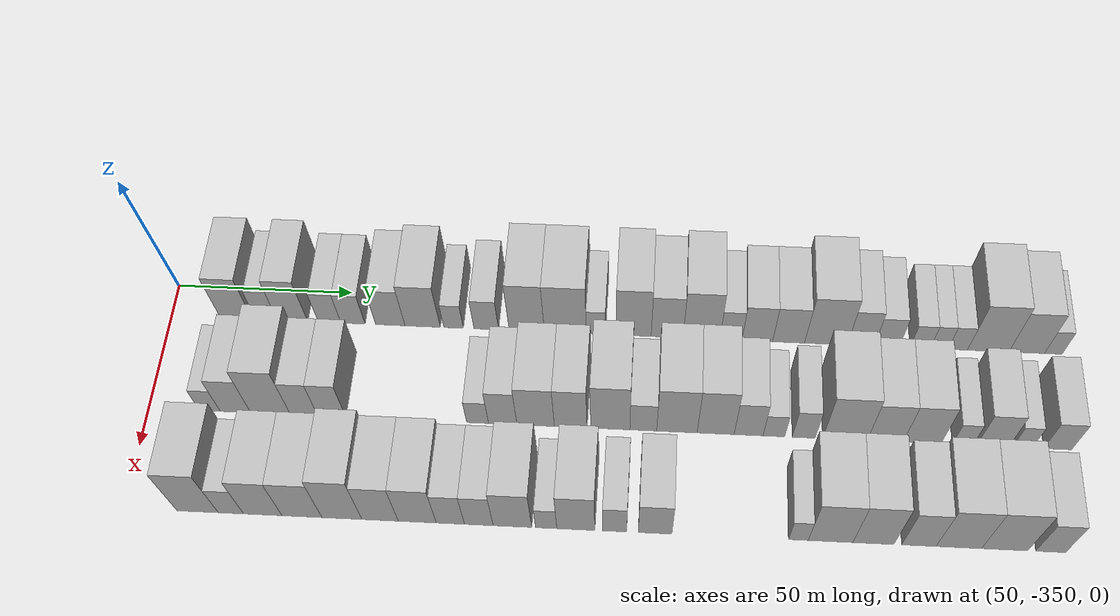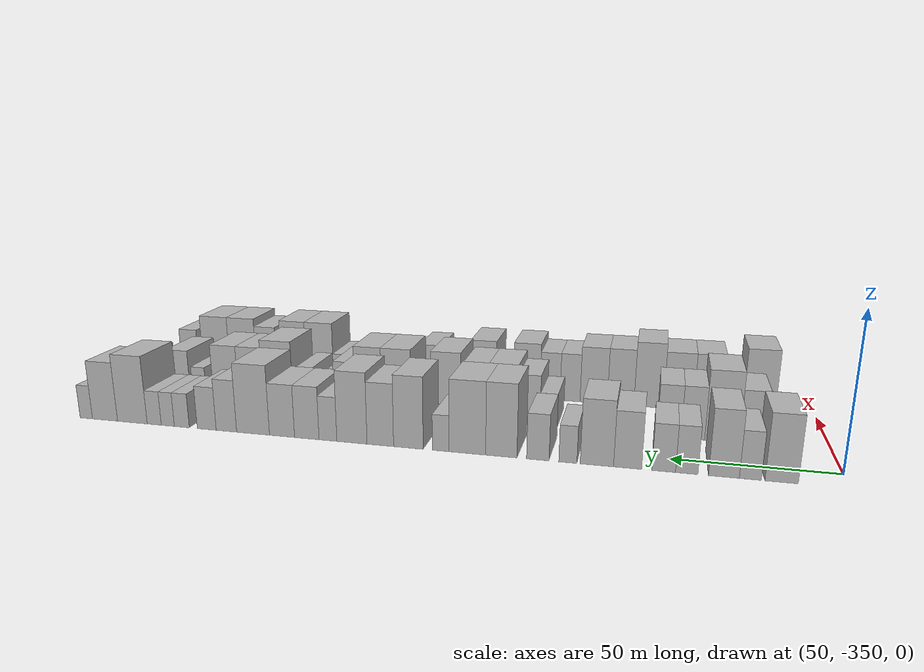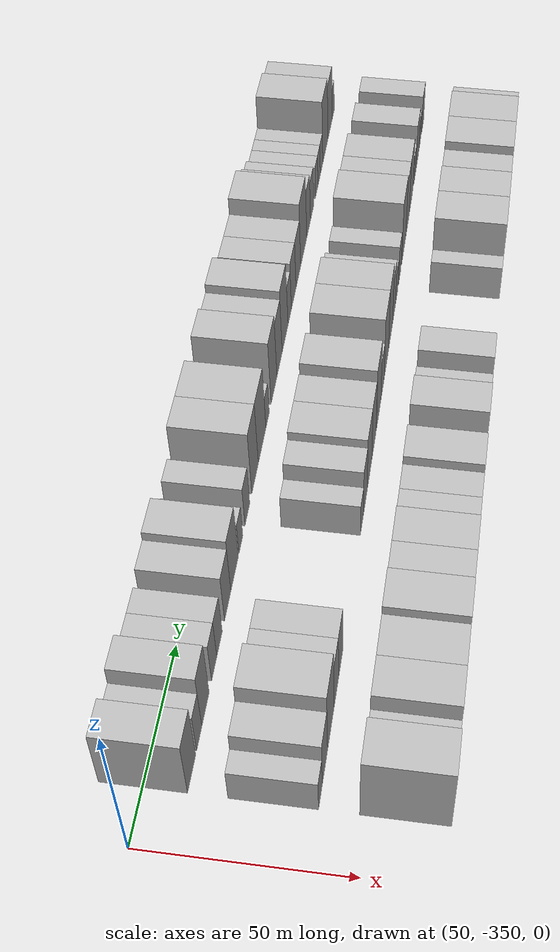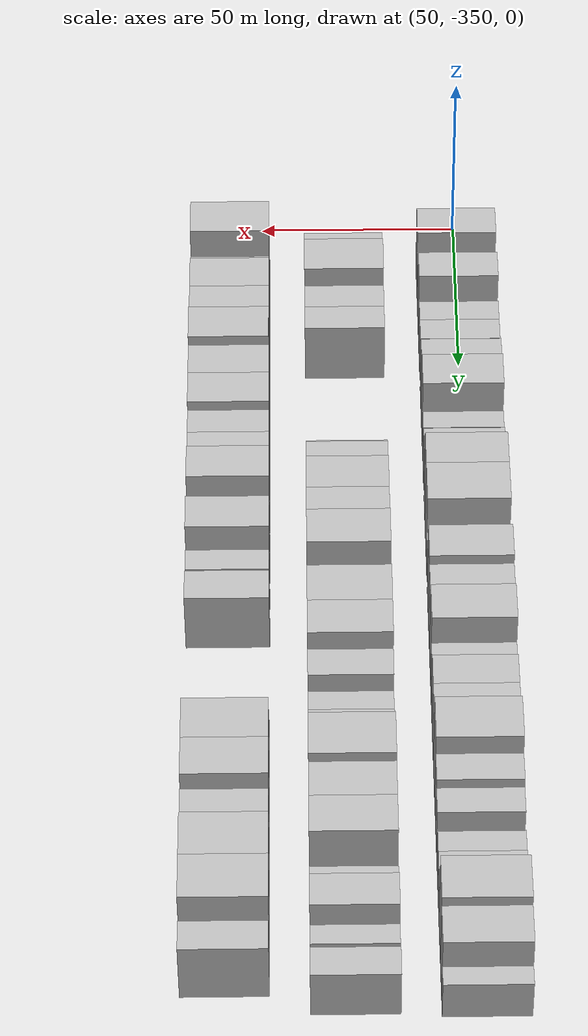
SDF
<sdf version="1.6">
 <world name="default">
  <model name="building_1">
   <static>1</static>
   <pose>50.0000 -331.4374 0 0.000000 0.000000 0.000000</pose>
   <link name="link">
    <pose>0 0 10.50 0 0 0</pose>
    <collision name="collision"><geometry><box><size>20.0000 9.1252 21.0000</size></box></geometry></collision>
    <visual name="visual">
     <cast_shadows>0</cast_shadows>
     <geometry><box><size>20.0000 9.1252 21.0000</size></box></geometry>
     <material>
      <script>
       <uri>model://HANNAS_wall/materials/scripts</uri>
       <uri>model://HANNAS_wall/materials/textures</uri>
       <name>vrc/HANNAS_wall</name>
      </script>
     </material>
    </visual>
   </link>
  </model>
  <model name="building_2">
   <static>1</static>
   <pose>50.0000 -322.8205 0 0.000000 0.000000 0.000000</pose>
   <link name="link">
    <pose>0 0 7.50 0 0 0</pose>
    <collision name="collision"><geometry><box><size>20.0000 6.1086 15.0000</size></box></geometry></collision>
    <visual name="visual">
     <cast_shadows>0</cast_shadows>
     <geometry><box><size>20.0000 6.1086 15.0000</size></box></geometry>
     <material>
      <script>
       <uri>model://HANNAS_wall/materials/scripts</uri>
       <uri>model://HANNAS_wall/materials/textures</uri>
       <name>vrc/HANNAS_wall</name>
      </script>
     </material>
    </visual>
   </link>
  </model>
  <model name="building_3">
   <static>1</static>
   <pose>50.0000 -315.4396 0 0.000000 0.000000 0.000000</pose>
   <link name="link">
    <pose>0 0 10.50 0 0 0</pose>
    <collision name="collision"><geometry><box><size>20.0000 8.6531 21.0000</size></box></geometry></collision>
    <visual name="visual">
     <cast_shadows>0</cast_shadows>
     <geometry><box><size>20.0000 8.6531 21.0000</size></box></geometry>
     <material>
      <script>
       <uri>model://HANNAS_wall/materials/scripts</uri>
       <uri>model://HANNAS_wall/materials/textures</uri>
       <name>vrc/HANNAS_wall</name>
      </script>
     </material>
    </visual>
   </link>
  </model>
  <model name="building_4">
   <static>1</static>
   <pose>50.0000 -304.8928 0 0.000000 0.000000 0.000000</pose>
   <link name="link">
    <pose>0 0 7.50 0 0 0</pose>
    <collision name="collision"><geometry><box><size>20.0000 6.4405 15.0000</size></box></geometry></collision>
    <visual name="visual">
     <cast_shadows>0</cast_shadows>
     <geometry><box><size>20.0000 6.4405 15.0000</size></box></geometry>
     <material>
      <script>
       <uri>model://HANNAS_wall/materials/scripts</uri>
       <uri>model://HANNAS_wall/materials/textures</uri>
       <name>vrc/HANNAS_wall</name>
      </script>
     </material>
    </visual>
   </link>
  </model>
  <model name="building_5">
   <static>1</static>
   <pose>50.0000 -298.2574 0 0.000000 0.000000 0.000000</pose>
   <link name="link">
    <pose>0 0 7.50 0 0 0</pose>
    <collision name="collision"><geometry><box><size>20.0000 6.8302 15.0000</size></box></geometry></collision>
    <visual name="visual">
     <cast_shadows>0</cast_shadows>
     <geometry><box><size>20.0000 6.8302 15.0000</size></box></geometry>
     <material>
      <script>
       <uri>model://HANNAS_wall/materials/scripts</uri>
       <uri>model://HANNAS_wall/materials/textures</uri>
       <name>vrc/HANNAS_wall</name>
      </script>
     </material>
    </visual>
   </link>
  </model>
  <model name="building_6">
   <static>1</static>
   <pose>50.0000 -287.6913 0 0.000000 0.000000 0.000000</pose>
   <link name="link">
    <pose>0 0 9.00 0 0 0</pose>
    <collision name="collision"><geometry><box><size>20.0000 8.3021 18.0000</size></box></geometry></collision>
    <visual name="visual">
     <cast_shadows>0</cast_shadows>
     <geometry><box><size>20.0000 8.3021 18.0000</size></box></geometry>
     <material>
      <script>
       <uri>model://HANNAS_wall/materials/scripts</uri>
       <uri>model://HANNAS_wall/materials/textures</uri>
       <name>vrc/HANNAS_wall</name>
      </script>
     </material>
    </visual>
   </link>
  </model>
  <model name="building_7">
   <static>1</static>
   <pose>50.0000 -278.5388 0 0.000000 0.000000 0.000000</pose>
   <link name="link">
    <pose>0 0 10.50 0 0 0</pose>
    <collision name="collision"><geometry><box><size>20.0000 10.0028 21.0000</size></box></geometry></collision>
    <visual name="visual">
     <cast_shadows>0</cast_shadows>
     <geometry><box><size>20.0000 10.0028 21.0000</size></box></geometry>
     <material>
      <script>
       <uri>model://HANNAS_wall/materials/scripts</uri>
       <uri>model://HANNAS_wall/materials/textures</uri>
       <name>vrc/HANNAS_wall</name>
      </script>
     </material>
    </visual>
   </link>
  </model>
  <model name="building_8">
   <static>1</static>
   <pose>50.0000 -269.7863 0 0.000000 0.000000 0.000000</pose>
   <link name="link">
    <pose>0 0 6.00 0 0 0</pose>
    <collision name="collision"><geometry><box><size>20.0000 5.5023 12.0000</size></box></geometry></collision>
    <visual name="visual">
     <cast_shadows>0</cast_shadows>
     <geometry><box><size>20.0000 5.5023 12.0000</size></box></geometry>
     <material>
      <script>
       <uri>model://HANNAS_wall/materials/scripts</uri>
       <uri>model://HANNAS_wall/materials/textures</uri>
       <name>vrc/HANNAS_wall</name>
      </script>
     </material>
    </visual>
   </link>
  </model>
  <model name="building_9">
   <static>1</static>
   <pose>50.0000 -260.5613 0 0.000000 0.000000 0.000000</pose>
   <link name="link">
    <pose>0 0 7.50 0 0 0</pose>
    <collision name="collision"><geometry><box><size>20.0000 6.9476 15.0000</size></box></geometry></collision>
    <visual name="visual">
     <cast_shadows>0</cast_shadows>
     <geometry><box><size>20.0000 6.9476 15.0000</size></box></geometry>
     <material>
      <script>
       <uri>model://HANNAS_wall/materials/scripts</uri>
       <uri>model://HANNAS_wall/materials/textures</uri>
       <name>vrc/HANNAS_wall</name>
      </script>
     </material>
    </visual>
   </link>
  </model>
  <model name="building_10">
   <static>1</static>
   <pose>50.0000 -249.1373 0 0.000000 0.000000 0.000000</pose>
   <link name="link">
    <pose>0 0 12.00 0 0 0</pose>
    <collision name="collision"><geometry><box><size>20.0000 9.9005 24.0000</size></box></geometry></collision>
    <visual name="visual">
     <cast_shadows>0</cast_shadows>
     <geometry><box><size>20.0000 9.9005 24.0000</size></box></geometry>
     <material>
      <script>
       <uri>model://HANNAS_wall/materials/scripts</uri>
       <uri>model://HANNAS_wall/materials/textures</uri>
       <name>vrc/HANNAS_wall</name>
      </script>
     </material>
    </visual>
   </link>
  </model>
  <model name="building_11">
   <static>1</static>
   <pose>50.0000 -238.2753 0 0.000000 0.000000 0.000000</pose>
   <link name="link">
    <pose>0 0 12.00 0 0 0</pose>
    <collision name="collision"><geometry><box><size>20.0000 11.8236 24.0000</size></box></geometry></collision>
    <visual name="visual">
     <cast_shadows>0</cast_shadows>
     <geometry><box><size>20.0000 11.8236 24.0000</size></box></geometry>
     <material>
      <script>
       <uri>model://HANNAS_wall/materials/scripts</uri>
       <uri>model://HANNAS_wall/materials/textures</uri>
       <name>vrc/HANNAS_wall</name>
      </script>
     </material>
    </visual>
   </link>
  </model>
  <model name="building_12">
   <static>1</static>
   <pose>50.0000 -229.6843 0 0.000000 0.000000 0.000000</pose>
   <link name="link">
    <pose>0 0 6.00 0 0 0</pose>
    <collision name="collision"><geometry><box><size>20.0000 5.3582 12.0000</size></box></geometry></collision>
    <visual name="visual">
     <cast_shadows>0</cast_shadows>
     <geometry><box><size>20.0000 5.3582 12.0000</size></box></geometry>
     <material>
      <script>
       <uri>model://HANNAS_wall/materials/scripts</uri>
       <uri>model://HANNAS_wall/materials/textures</uri>
       <name>vrc/HANNAS_wall</name>
      </script>
     </material>
    </visual>
   </link>
  </model>
  <model name="building_13">
   <static>1</static>
   <pose>50.0000 -219.1030 0 0.000000 0.000000 0.000000</pose>
   <link name="link">
    <pose>0 0 12.00 0 0 0</pose>
    <collision name="collision"><geometry><box><size>20.0000 9.8044 24.0000</size></box></geometry></collision>
    <visual name="visual">
     <cast_shadows>0</cast_shadows>
     <geometry><box><size>20.0000 9.8044 24.0000</size></box></geometry>
     <material>
      <script>
       <uri>model://HANNAS_wall/materials/scripts</uri>
       <uri>model://HANNAS_wall/materials/textures</uri>
       <name>vrc/HANNAS_wall</name>
      </script>
     </material>
    </visual>
   </link>
  </model>
  <model name="building_14">
   <static>1</static>
   <pose>50.0000 -209.7361 0 0.000000 0.000000 0.000000</pose>
   <link name="link">
    <pose>0 0 10.50 0 0 0</pose>
    <collision name="collision"><geometry><box><size>20.0000 8.9294 21.0000</size></box></geometry></collision>
    <visual name="visual">
     <cast_shadows>0</cast_shadows>
     <geometry><box><size>20.0000 8.9294 21.0000</size></box></geometry>
     <material>
      <script>
       <uri>model://HANNAS_wall/materials/scripts</uri>
       <uri>model://HANNAS_wall/materials/textures</uri>
       <name>vrc/HANNAS_wall</name>
      </script>
     </material>
    </visual>
   </link>
  </model>
  <model name="building_15">
   <static>1</static>
   <pose>50.0000 -200.1119 0 0.000000 0.000000 0.000000</pose>
   <link name="link">
    <pose>0 0 12.00 0 0 0</pose>
    <collision name="collision"><geometry><box><size>20.0000 10.3190 24.0000</size></box></geometry></collision>
    <visual name="visual">
     <cast_shadows>0</cast_shadows>
     <geometry><box><size>20.0000 10.3190 24.0000</size></box></geometry>
     <material>
      <script>
       <uri>model://HANNAS_wall/materials/scripts</uri>
       <uri>model://HANNAS_wall/materials/textures</uri>
       <name>vrc/HANNAS_wall</name>
      </script>
     </material>
    </visual>
   </link>
  </model>
  <model name="building_16">
   <static>1</static>
   <pose>50.0000 -191.8683 0 0.000000 0.000000 0.000000</pose>
   <link name="link">
    <pose>0 0 7.50 0 0 0</pose>
    <collision name="collision"><geometry><box><size>20.0000 6.1682 15.0000</size></box></geometry></collision>
    <visual name="visual">
     <cast_shadows>0</cast_shadows>
     <geometry><box><size>20.0000 6.1682 15.0000</size></box></geometry>
     <material>
      <script>
       <uri>model://HANNAS_wall/materials/scripts</uri>
       <uri>model://HANNAS_wall/materials/textures</uri>
       <name>vrc/HANNAS_wall</name>
      </script>
     </material>
    </visual>
   </link>
  </model>
  <model name="building_17">
   <static>1</static>
   <pose>50.0000 -184.5009 0 0.000000 0.000000 0.000000</pose>
   <link name="link">
    <pose>0 0 9.00 0 0 0</pose>
    <collision name="collision"><geometry><box><size>20.0000 8.5665 18.0000</size></box></geometry></collision>
    <visual name="visual">
     <cast_shadows>0</cast_shadows>
     <geometry><box><size>20.0000 8.5665 18.0000</size></box></geometry>
     <material>
      <script>
       <uri>model://HANNAS_wall/materials/scripts</uri>
       <uri>model://HANNAS_wall/materials/textures</uri>
       <name>vrc/HANNAS_wall</name>
      </script>
     </material>
    </visual>
   </link>
  </model>
  <model name="building_18">
   <static>1</static>
   <pose>50.0000 -175.7583 0 0.000000 0.000000 0.000000</pose>
   <link name="link">
    <pose>0 0 9.00 0 0 0</pose>
    <collision name="collision"><geometry><box><size>20.0000 8.9187 18.0000</size></box></geometry></collision>
    <visual name="visual">
     <cast_shadows>0</cast_shadows>
     <geometry><box><size>20.0000 8.9187 18.0000</size></box></geometry>
     <material>
      <script>
       <uri>model://HANNAS_wall/materials/scripts</uri>
       <uri>model://HANNAS_wall/materials/textures</uri>
       <name>vrc/HANNAS_wall</name>
      </script>
     </material>
    </visual>
   </link>
  </model>
  <model name="building_19">
   <static>1</static>
   <pose>50.0000 -165.3610 0 0.000000 0.000000 0.000000</pose>
   <link name="link">
    <pose>0 0 12.00 0 0 0</pose>
    <collision name="collision"><geometry><box><size>20.0000 11.8758 24.0000</size></box></geometry></collision>
    <visual name="visual">
     <cast_shadows>0</cast_shadows>
     <geometry><box><size>20.0000 11.8758 24.0000</size></box></geometry>
     <material>
      <script>
       <uri>model://HANNAS_wall/materials/scripts</uri>
       <uri>model://HANNAS_wall/materials/textures</uri>
       <name>vrc/HANNAS_wall</name>
      </script>
     </material>
    </visual>
   </link>
  </model>
  <model name="building_20">
   <static>1</static>
   <pose>50.0000 -155.6703 0 0.000000 0.000000 0.000000</pose>
   <link name="link">
    <pose>0 0 9.00 0 0 0</pose>
    <collision name="collision"><geometry><box><size>20.0000 7.5056 18.0000</size></box></geometry></collision>
    <visual name="visual">
     <cast_shadows>0</cast_shadows>
     <geometry><box><size>20.0000 7.5056 18.0000</size></box></geometry>
     <material>
      <script>
       <uri>model://HANNAS_wall/materials/scripts</uri>
       <uri>model://HANNAS_wall/materials/textures</uri>
       <name>vrc/HANNAS_wall</name>
      </script>
     </material>
    </visual>
   </link>
  </model>
  <model name="building_21">
   <static>1</static>
   <pose>50.0000 -148.4267 0 0.000000 0.000000 0.000000</pose>
   <link name="link">
    <pose>0 0 7.50 0 0 0</pose>
    <collision name="collision"><geometry><box><size>20.0000 6.9815 15.0000</size></box></geometry></collision>
    <visual name="visual">
     <cast_shadows>0</cast_shadows>
     <geometry><box><size>20.0000 6.9815 15.0000</size></box></geometry>
     <material>
      <script>
       <uri>model://HANNAS_wall/materials/scripts</uri>
       <uri>model://HANNAS_wall/materials/textures</uri>
       <name>vrc/HANNAS_wall</name>
      </script>
     </material>
    </visual>
   </link>
  </model>
  <model name="building_22">
   <static>1</static>
   <pose>50.0000 -139.1148 0 0.000000 0.000000 0.000000</pose>
   <link name="link">
    <pose>0 0 6.00 0 0 0</pose>
    <collision name="collision"><geometry><box><size>20.0000 5.6423 12.0000</size></box></geometry></collision>
    <visual name="visual">
     <cast_shadows>0</cast_shadows>
     <geometry><box><size>20.0000 5.6423 12.0000</size></box></geometry>
     <material>
      <script>
       <uri>model://HANNAS_wall/materials/scripts</uri>
       <uri>model://HANNAS_wall/materials/textures</uri>
       <name>vrc/HANNAS_wall</name>
      </script>
     </material>
    </visual>
   </link>
  </model>
  <model name="building_23">
   <static>1</static>
   <pose>50.0000 -133.8215 0 0.000000 0.000000 0.000000</pose>
   <link name="link">
    <pose>0 0 6.00 0 0 0</pose>
    <collision name="collision"><geometry><box><size>20.0000 4.9443 12.0000</size></box></geometry></collision>
    <visual name="visual">
     <cast_shadows>0</cast_shadows>
     <geometry><box><size>20.0000 4.9443 12.0000</size></box></geometry>
     <material>
      <script>
       <uri>model://HANNAS_wall/materials/scripts</uri>
       <uri>model://HANNAS_wall/materials/textures</uri>
       <name>vrc/HANNAS_wall</name>
      </script>
     </material>
    </visual>
   </link>
  </model>
  <model name="building_24">
   <static>1</static>
   <pose>50.0000 -128.6585 0 0.000000 0.000000 0.000000</pose>
   <link name="link">
    <pose>0 0 6.00 0 0 0</pose>
    <collision name="collision"><geometry><box><size>20.0000 5.3816 12.0000</size></box></geometry></collision>
    <visual name="visual">
     <cast_shadows>0</cast_shadows>
     <geometry><box><size>20.0000 5.3816 12.0000</size></box></geometry>
     <material>
      <script>
       <uri>model://HANNAS_wall/materials/scripts</uri>
       <uri>model://HANNAS_wall/materials/textures</uri>
       <name>vrc/HANNAS_wall</name>
      </script>
     </material>
    </visual>
   </link>
  </model>
  <model name="building_25">
   <static>1</static>
   <pose>50.0000 -120.2226 0 0.000000 0.000000 0.000000</pose>
   <link name="link">
    <pose>0 0 12.00 0 0 0</pose>
    <collision name="collision"><geometry><box><size>20.0000 11.4903 24.0000</size></box></geometry></collision>
    <visual name="visual">
     <cast_shadows>0</cast_shadows>
     <geometry><box><size>20.0000 11.4903 24.0000</size></box></geometry>
     <material>
      <script>
       <uri>model://HANNAS_wall/materials/scripts</uri>
       <uri>model://HANNAS_wall/materials/textures</uri>
       <name>vrc/HANNAS_wall</name>
      </script>
     </material>
    </visual>
   </link>
  </model>
  <model name="building_26">
   <static>1</static>
   <pose>50.0000 -109.5448 0 0.000000 0.000000 0.000000</pose>
   <link name="link">
    <pose>0 0 10.50 0 0 0</pose>
    <collision name="collision"><geometry><box><size>20.0000 9.8654 21.0000</size></box></geometry></collision>
    <visual name="visual">
     <cast_shadows>0</cast_shadows>
     <geometry><box><size>20.0000 9.8654 21.0000</size></box></geometry>
     <material>
      <script>
       <uri>model://HANNAS_wall/materials/scripts</uri>
       <uri>model://HANNAS_wall/materials/textures</uri>
       <name>vrc/HANNAS_wall</name>
      </script>
     </material>
    </visual>
   </link>
  </model>
  <model name="building_27">
   <static>1</static>
   <pose>50.0000 -102.1671 0 0.000000 0.000000 0.000000</pose>
   <link name="link">
    <pose>0 0 6.00 0 0 0</pose>
    <collision name="collision"><geometry><box><size>20.0000 4.8900 12.0000</size></box></geometry></collision>
    <visual name="visual">
     <cast_shadows>0</cast_shadows>
     <geometry><box><size>20.0000 4.8900 12.0000</size></box></geometry>
     <material>
      <script>
       <uri>model://HANNAS_wall/materials/scripts</uri>
       <uri>model://HANNAS_wall/materials/textures</uri>
       <name>vrc/HANNAS_wall</name>
      </script>
     </material>
    </visual>
   </link>
  </model>
  <model name="building_76">
   <static>1</static>
   <pose>79.0000 -333.1546 0 0.000000 0.000000 0.000000</pose>
   <link name="link">
    <pose>0 0 6.00 0 0 0</pose>
    <collision name="collision"><geometry><box><size>20.0000 5.6909 12.0000</size></box></geometry></collision>
    <visual name="visual">
     <cast_shadows>0</cast_shadows>
     <geometry><box><size>20.0000 5.6909 12.0000</size></box></geometry>
     <material>
      <script>
       <uri>model://HANNAS_wall/materials/scripts</uri>
       <uri>model://HANNAS_wall/materials/textures</uri>
       <name>vrc/HANNAS_wall</name>
      </script>
     </material>
    </visual>
   </link>
  </model>
  <model name="building_77">
   <static>1</static>
   <pose>79.0000 -326.1444 0 0.000000 0.000000 0.000000</pose>
   <link name="link">
    <pose>0 0 9.00 0 0 0</pose>
    <collision name="collision"><geometry><box><size>20.0000 8.3294 18.0000</size></box></geometry></collision>
    <visual name="visual">
     <cast_shadows>0</cast_shadows>
     <geometry><box><size>20.0000 8.3294 18.0000</size></box></geometry>
     <material>
      <script>
       <uri>model://HANNAS_wall/materials/scripts</uri>
       <uri>model://HANNAS_wall/materials/textures</uri>
       <name>vrc/HANNAS_wall</name>
      </script>
     </material>
    </visual>
   </link>
  </model>
  <model name="building_78">
   <static>1</static>
   <pose>79.0000 -316.5588 0 0.000000 0.000000 0.000000</pose>
   <link name="link">
    <pose>0 0 12.00 0 0 0</pose>
    <collision name="collision"><geometry><box><size>20.0000 10.8419 24.0000</size></box></geometry></collision>
    <visual name="visual">
     <cast_shadows>0</cast_shadows>
     <geometry><box><size>20.0000 10.8419 24.0000</size></box></geometry>
     <material>
      <script>
       <uri>model://HANNAS_wall/materials/scripts</uri>
       <uri>model://HANNAS_wall/materials/textures</uri>
       <name>vrc/HANNAS_wall</name>
      </script>
     </material>
    </visual>
   </link>
  </model>
  <model name="building_79">
   <static>1</static>
   <pose>79.0000 -307.3980 0 0.000000 0.000000 0.000000</pose>
   <link name="link">
    <pose>0 0 9.00 0 0 0</pose>
    <collision name="collision"><geometry><box><size>20.0000 7.4797 18.0000</size></box></geometry></collision>
    <visual name="visual">
     <cast_shadows>0</cast_shadows>
     <geometry><box><size>20.0000 7.4797 18.0000</size></box></geometry>
     <material>
      <script>
       <uri>model://HANNAS_wall/materials/scripts</uri>
       <uri>model://HANNAS_wall/materials/textures</uri>
       <name>vrc/HANNAS_wall</name>
      </script>
     </material>
    </visual>
   </link>
  </model>
  <model name="building_80">
   <static>1</static>
   <pose>79.0000 -299.8156 0 0.000000 0.000000 0.000000</pose>
   <link name="link">
    <pose>0 0 9.00 0 0 0</pose>
    <collision name="collision"><geometry><box><size>20.0000 7.6851 18.0000</size></box></geometry></collision>
    <visual name="visual">
     <cast_shadows>0</cast_shadows>
     <geometry><box><size>20.0000 7.6851 18.0000</size></box></geometry>
     <material>
      <script>
       <uri>model://HANNAS_wall/materials/scripts</uri>
       <uri>model://HANNAS_wall/materials/textures</uri>
       <name>vrc/HANNAS_wall</name>
      </script>
     </material>
    </visual>
   </link>
  </model>
  <model name="building_81">
   <static>1</static>
   <pose>79.0000 -260.1151 0 0.000000 0.000000 0.000000</pose>
   <link name="link">
    <pose>0 0 6.00 0 0 0</pose>
    <collision name="collision"><geometry><box><size>20.0000 5.9054 12.0000</size></box></geometry></collision>
    <visual name="visual">
     <cast_shadows>0</cast_shadows>
     <geometry><box><size>20.0000 5.9054 12.0000</size></box></geometry>
     <material>
      <script>
       <uri>model://HANNAS_wall/materials/scripts</uri>
       <uri>model://HANNAS_wall/materials/textures</uri>
       <name>vrc/HANNAS_wall</name>
      </script>
     </material>
    </visual>
   </link>
  </model>
  <model name="building_82">
   <static>1</static>
   <pose>79.0000 -253.3113 0 0.000000 0.000000 0.000000</pose>
   <link name="link">
    <pose>0 0 9.00 0 0 0</pose>
    <collision name="collision"><geometry><box><size>20.0000 7.7022 18.0000</size></box></geometry></collision>
    <visual name="visual">
     <cast_shadows>0</cast_shadows>
     <geometry><box><size>20.0000 7.7022 18.0000</size></box></geometry>
     <material>
      <script>
       <uri>model://HANNAS_wall/materials/scripts</uri>
       <uri>model://HANNAS_wall/materials/textures</uri>
       <name>vrc/HANNAS_wall</name>
      </script>
     </material>
    </visual>
   </link>
  </model>
  <model name="building_83">
   <static>1</static>
   <pose>79.0000 -244.3942 0 0.000000 0.000000 0.000000</pose>
   <link name="link">
    <pose>0 0 10.50 0 0 0</pose>
    <collision name="collision"><geometry><box><size>20.0000 10.1319 21.0000</size></box></geometry></collision>
    <visual name="visual">
     <cast_shadows>0</cast_shadows>
     <geometry><box><size>20.0000 10.1319 21.0000</size></box></geometry>
     <material>
      <script>
       <uri>model://HANNAS_wall/materials/scripts</uri>
       <uri>model://HANNAS_wall/materials/textures</uri>
       <name>vrc/HANNAS_wall</name>
      </script>
     </material>
    </visual>
   </link>
  </model>
  <model name="building_84">
   <static>1</static>
   <pose>79.0000 -234.9003 0 0.000000 0.000000 0.000000</pose>
   <link name="link">
    <pose>0 0 10.50 0 0 0</pose>
    <collision name="collision"><geometry><box><size>20.0000 8.8560 21.0000</size></box></geometry></collision>
    <visual name="visual">
     <cast_shadows>0</cast_shadows>
     <geometry><box><size>20.0000 8.8560 21.0000</size></box></geometry>
     <material>
      <script>
       <uri>model://HANNAS_wall/materials/scripts</uri>
       <uri>model://HANNAS_wall/materials/textures</uri>
       <name>vrc/HANNAS_wall</name>
      </script>
     </material>
    </visual>
   </link>
  </model>
  <model name="building_85">
   <static>1</static>
   <pose>79.0000 -224.2066 0 0.000000 0.000000 0.000000</pose>
   <link name="link">
    <pose>0 0 12.00 0 0 0</pose>
    <collision name="collision"><geometry><box><size>20.0000 10.5312 24.0000</size></box></geometry></collision>
    <visual name="visual">
     <cast_shadows>0</cast_shadows>
     <geometry><box><size>20.0000 10.5312 24.0000</size></box></geometry>
     <material>
      <script>
       <uri>model://HANNAS_wall/materials/scripts</uri>
       <uri>model://HANNAS_wall/materials/textures</uri>
       <name>vrc/HANNAS_wall</name>
      </script>
     </material>
    </visual>
   </link>
  </model>
  <model name="building_86">
   <static>1</static>
   <pose>79.0000 -215.3283 0 0.000000 0.000000 0.000000</pose>
   <link name="link">
    <pose>0 0 7.50 0 0 0</pose>
    <collision name="collision"><geometry><box><size>20.0000 7.2254 15.0000</size></box></geometry></collision>
    <visual name="visual">
     <cast_shadows>0</cast_shadows>
     <geometry><box><size>20.0000 7.2254 15.0000</size></box></geometry>
     <material>
      <script>
       <uri>model://HANNAS_wall/materials/scripts</uri>
       <uri>model://HANNAS_wall/materials/textures</uri>
       <name>vrc/HANNAS_wall</name>
      </script>
     </material>
    </visual>
   </link>
  </model>
  <model name="building_87">
   <static>1</static>
   <pose>79.0000 -206.2690 0 0.000000 0.000000 0.000000</pose>
   <link name="link">
    <pose>0 0 12.00 0 0 0</pose>
    <collision name="collision"><geometry><box><size>20.0000 10.8932 24.0000</size></box></geometry></collision>
    <visual name="visual">
     <cast_shadows>0</cast_shadows>
     <geometry><box><size>20.0000 10.8932 24.0000</size></box></geometry>
     <material>
      <script>
       <uri>model://HANNAS_wall/materials/scripts</uri>
       <uri>model://HANNAS_wall/materials/textures</uri>
       <name>vrc/HANNAS_wall</name>
      </script>
     </material>
    </visual>
   </link>
  </model>
  <model name="building_88">
   <static>1</static>
   <pose>79.0000 -195.8369 0 0.000000 0.000000 0.000000</pose>
   <link name="link">
    <pose>0 0 12.00 0 0 0</pose>
    <collision name="collision"><geometry><box><size>20.0000 9.9709 24.0000</size></box></geometry></collision>
    <visual name="visual">
     <cast_shadows>0</cast_shadows>
     <geometry><box><size>20.0000 9.9709 24.0000</size></box></geometry>
     <material>
      <script>
       <uri>model://HANNAS_wall/materials/scripts</uri>
       <uri>model://HANNAS_wall/materials/textures</uri>
       <name>vrc/HANNAS_wall</name>
      </script>
     </material>
    </visual>
   </link>
  </model>
  <model name="building_89">
   <static>1</static>
   <pose>79.0000 -186.9720 0 0.000000 0.000000 0.000000</pose>
   <link name="link">
    <pose>0 0 9.00 0 0 0</pose>
    <collision name="collision"><geometry><box><size>20.0000 7.7589 18.0000</size></box></geometry></collision>
    <visual name="visual">
     <cast_shadows>0</cast_shadows>
     <geometry><box><size>20.0000 7.7589 18.0000</size></box></geometry>
     <material>
      <script>
       <uri>model://HANNAS_wall/materials/scripts</uri>
       <uri>model://HANNAS_wall/materials/textures</uri>
       <name>vrc/HANNAS_wall</name>
      </script>
     </material>
    </visual>
   </link>
  </model>
  <model name="building_90">
   <static>1</static>
   <pose>79.0000 -180.1743 0 0.000000 0.000000 0.000000</pose>
   <link name="link">
    <pose>0 0 6.00 0 0 0</pose>
    <collision name="collision"><geometry><box><size>20.0000 5.8364 12.0000</size></box></geometry></collision>
    <visual name="visual">
     <cast_shadows>0</cast_shadows>
     <geometry><box><size>20.0000 5.8364 12.0000</size></box></geometry>
     <material>
      <script>
       <uri>model://HANNAS_wall/materials/scripts</uri>
       <uri>model://HANNAS_wall/materials/textures</uri>
       <name>vrc/HANNAS_wall</name>
      </script>
     </material>
    </visual>
   </link>
  </model>
  <model name="building_91">
   <static>1</static>
   <pose>79.0000 -172.1703 0 0.000000 0.000000 0.000000</pose>
   <link name="link">
    <pose>0 0 7.50 0 0 0</pose>
    <collision name="collision"><geometry><box><size>20.0000 6.1716 15.0000</size></box></geometry></collision>
    <visual name="visual">
     <cast_shadows>0</cast_shadows>
     <geometry><box><size>20.0000 6.1716 15.0000</size></box></geometry>
     <material>
      <script>
       <uri>model://HANNAS_wall/materials/scripts</uri>
       <uri>model://HANNAS_wall/materials/textures</uri>
       <name>vrc/HANNAS_wall</name>
      </script>
     </material>
    </visual>
   </link>
  </model>
  <model name="building_92">
   <static>1</static>
   <pose>79.0000 -161.1250 0 0.000000 0.000000 0.000000</pose>
   <link name="link">
    <pose>0 0 12.00 0 0 0</pose>
    <collision name="collision"><geometry><box><size>20.0000 11.9190 24.0000</size></box></geometry></collision>
    <visual name="visual">
     <cast_shadows>0</cast_shadows>
     <geometry><box><size>20.0000 11.9190 24.0000</size></box></geometry>
     <material>
      <script>
       <uri>model://HANNAS_wall/materials/scripts</uri>
       <uri>model://HANNAS_wall/materials/textures</uri>
       <name>vrc/HANNAS_wall</name>
      </script>
     </material>
    </visual>
   </link>
  </model>
  <model name="building_93">
   <static>1</static>
   <pose>79.0000 -150.3536 0 0.000000 0.000000 0.000000</pose>
   <link name="link">
    <pose>0 0 10.50 0 0 0</pose>
    <collision name="collision"><geometry><box><size>20.0000 9.6240 21.0000</size></box></geometry></collision>
    <visual name="visual">
     <cast_shadows>0</cast_shadows>
     <geometry><box><size>20.0000 9.6240 21.0000</size></box></geometry>
     <material>
      <script>
       <uri>model://HANNAS_wall/materials/scripts</uri>
       <uri>model://HANNAS_wall/materials/textures</uri>
       <name>vrc/HANNAS_wall</name>
      </script>
     </material>
    </visual>
   </link>
  </model>
  <model name="building_94">
   <static>1</static>
   <pose>79.0000 -140.4870 0 0.000000 0.000000 0.000000</pose>
   <link name="link">
    <pose>0 0 10.50 0 0 0</pose>
    <collision name="collision"><geometry><box><size>20.0000 10.1092 21.0000</size></box></geometry></collision>
    <visual name="visual">
     <cast_shadows>0</cast_shadows>
     <geometry><box><size>20.0000 10.1092 21.0000</size></box></geometry>
     <material>
      <script>
       <uri>model://HANNAS_wall/materials/scripts</uri>
       <uri>model://HANNAS_wall/materials/textures</uri>
       <name>vrc/HANNAS_wall</name>
      </script>
     </material>
    </visual>
   </link>
  </model>
  <model name="building_95">
   <static>1</static>
   <pose>79.0000 -129.6881 0 0.000000 0.000000 0.000000</pose>
   <link name="link">
    <pose>0 0 6.00 0 0 0</pose>
    <collision name="collision"><geometry><box><size>20.0000 5.4885 12.0000</size></box></geometry></collision>
    <visual name="visual">
     <cast_shadows>0</cast_shadows>
     <geometry><box><size>20.0000 5.4885 12.0000</size></box></geometry>
     <material>
      <script>
       <uri>model://HANNAS_wall/materials/scripts</uri>
       <uri>model://HANNAS_wall/materials/textures</uri>
       <name>vrc/HANNAS_wall</name>
      </script>
     </material>
    </visual>
   </link>
  </model>
  <model name="building_96">
   <static>1</static>
   <pose>79.0000 -121.6386 0 0.000000 0.000000 0.000000</pose>
   <link name="link">
    <pose>0 0 9.00 0 0 0</pose>
    <collision name="collision"><geometry><box><size>20.0000 8.6105 18.0000</size></box></geometry></collision>
    <visual name="visual">
     <cast_shadows>0</cast_shadows>
     <geometry><box><size>20.0000 8.6105 18.0000</size></box></geometry>
     <material>
      <script>
       <uri>model://HANNAS_wall/materials/scripts</uri>
       <uri>model://HANNAS_wall/materials/textures</uri>
       <name>vrc/HANNAS_wall</name>
      </script>
     </material>
    </visual>
   </link>
  </model>
  <model name="building_97">
   <static>1</static>
   <pose>79.0000 -113.7075 0 0.000000 0.000000 0.000000</pose>
   <link name="link">
    <pose>0 0 6.00 0 0 0</pose>
    <collision name="collision"><geometry><box><size>20.0000 5.2517 12.0000</size></box></geometry></collision>
    <visual name="visual">
     <cast_shadows>0</cast_shadows>
     <geometry><box><size>20.0000 5.2517 12.0000</size></box></geometry>
     <material>
      <script>
       <uri>model://HANNAS_wall/materials/scripts</uri>
       <uri>model://HANNAS_wall/materials/textures</uri>
       <name>vrc/HANNAS_wall</name>
      </script>
     </material>
    </visual>
   </link>
  </model>
  <model name="building_98">
   <static>1</static>
   <pose>79.0000 -104.3470 0 0.000000 0.000000 0.000000</pose>
   <link name="link">
    <pose>0 0 7.50 0 0 0</pose>
    <collision name="collision"><geometry><box><size>20.0000 7.4694 15.0000</size></box></geometry></collision>
    <visual name="visual">
     <cast_shadows>0</cast_shadows>
     <geometry><box><size>20.0000 7.4694 15.0000</size></box></geometry>
     <material>
      <script>
       <uri>model://HANNAS_wall/materials/scripts</uri>
       <uri>model://HANNAS_wall/materials/textures</uri>
       <name>vrc/HANNAS_wall</name>
      </script>
     </material>
    </visual>
   </link>
  </model>
  <model name="building_150">
   <static>1</static>
   <pose>108.0000 -330.5621 0 0.000000 0.000000 0.000000</pose>
   <link name="link">
    <pose>0 0 12.00 0 0 0</pose>
    <collision name="collision"><geometry><box><size>20.0000 10.8758 24.0000</size></box></geometry></collision>
    <visual name="visual">
     <cast_shadows>0</cast_shadows>
     <geometry><box><size>20.0000 10.8758 24.0000</size></box></geometry>
     <material>
      <script>
       <uri>model://HANNAS_wall/materials/scripts</uri>
       <uri>model://HANNAS_wall/materials/textures</uri>
       <name>vrc/HANNAS_wall</name>
      </script>
     </material>
    </visual>
   </link>
  </model>
  <model name="building_151">
   <static>1</static>
   <pose>108.0000 -321.7988 0 0.000000 0.000000 0.000000</pose>
   <link name="link">
    <pose>0 0 7.50 0 0 0</pose>
    <collision name="collision"><geometry><box><size>20.0000 6.6509 15.0000</size></box></geometry></collision>
    <visual name="visual">
     <cast_shadows>0</cast_shadows>
     <geometry><box><size>20.0000 6.6509 15.0000</size></box></geometry>
     <material>
      <script>
       <uri>model://HANNAS_wall/materials/scripts</uri>
       <uri>model://HANNAS_wall/materials/textures</uri>
       <name>vrc/HANNAS_wall</name>
      </script>
     </material>
    </visual>
   </link>
  </model>
  <model name="building_152">
   <static>1</static>
   <pose>108.0000 -313.4270 0 0.000000 0.000000 0.000000</pose>
   <link name="link">
    <pose>0 0 10.50 0 0 0</pose>
    <collision name="collision"><geometry><box><size>20.0000 10.0927 21.0000</size></box></geometry></collision>
    <visual name="visual">
     <cast_shadows>0</cast_shadows>
     <geometry><box><size>20.0000 10.0927 21.0000</size></box></geometry>
     <material>
      <script>
       <uri>model://HANNAS_wall/materials/scripts</uri>
       <uri>model://HANNAS_wall/materials/textures</uri>
       <name>vrc/HANNAS_wall</name>
      </script>
     </material>
    </visual>
   </link>
  </model>
  <model name="building_153">
   <static>1</static>
   <pose>108.0000 -303.1469 0 0.000000 0.000000 0.000000</pose>
   <link name="link">
    <pose>0 0 10.50 0 0 0</pose>
    <collision name="collision"><geometry><box><size>20.0000 10.4676 21.0000</size></box></geometry></collision>
    <visual name="visual">
     <cast_shadows>0</cast_shadows>
     <geometry><box><size>20.0000 10.4676 21.0000</size></box></geometry>
     <material>
      <script>
       <uri>model://HANNAS_wall/materials/scripts</uri>
       <uri>model://HANNAS_wall/materials/textures</uri>
       <name>vrc/HANNAS_wall</name>
      </script>
     </material>
    </visual>
   </link>
  </model>
  <model name="building_154">
   <static>1</static>
   <pose>108.0000 -292.7002 0 0.000000 0.000000 0.000000</pose>
   <link name="link">
    <pose>0 0 12.00 0 0 0</pose>
    <collision name="collision"><geometry><box><size>20.0000 10.4257 24.0000</size></box></geometry></collision>
    <visual name="visual">
     <cast_shadows>0</cast_shadows>
     <geometry><box><size>20.0000 10.4257 24.0000</size></box></geometry>
     <material>
      <script>
       <uri>model://HANNAS_wall/materials/scripts</uri>
       <uri>model://HANNAS_wall/materials/textures</uri>
       <name>vrc/HANNAS_wall</name>
      </script>
     </material>
    </visual>
   </link>
  </model>
  <model name="building_155">
   <static>1</static>
   <pose>108.0000 -282.7196 0 0.000000 0.000000 0.000000</pose>
   <link name="link">
    <pose>0 0 10.50 0 0 0</pose>
    <collision name="collision"><geometry><box><size>20.0000 9.5356 21.0000</size></box></geometry></collision>
    <visual name="visual">
     <cast_shadows>0</cast_shadows>
     <geometry><box><size>20.0000 9.5356 21.0000</size></box></geometry>
     <material>
      <script>
       <uri>model://HANNAS_wall/materials/scripts</uri>
       <uri>model://HANNAS_wall/materials/textures</uri>
       <name>vrc/HANNAS_wall</name>
      </script>
     </material>
    </visual>
   </link>
  </model>
  <model name="building_156">
   <static>1</static>
   <pose>108.0000 -272.9784 0 0.000000 0.000000 0.000000</pose>
   <link name="link">
    <pose>0 0 10.50 0 0 0</pose>
    <collision name="collision"><geometry><box><size>20.0000 9.9470 21.0000</size></box></geometry></collision>
    <visual name="visual">
     <cast_shadows>0</cast_shadows>
     <geometry><box><size>20.0000 9.9470 21.0000</size></box></geometry>
     <material>
      <script>
       <uri>model://HANNAS_wall/materials/scripts</uri>
       <uri>model://HANNAS_wall/materials/textures</uri>
       <name>vrc/HANNAS_wall</name>
      </script>
     </material>
    </visual>
   </link>
  </model>
  <model name="building_157">
   <static>1</static>
   <pose>108.0000 -264.3250 0 0.000000 0.000000 0.000000</pose>
   <link name="link">
    <pose>0 0 9.00 0 0 0</pose>
    <collision name="collision"><geometry><box><size>20.0000 7.3597 18.0000</size></box></geometry></collision>
    <visual name="visual">
     <cast_shadows>0</cast_shadows>
     <geometry><box><size>20.0000 7.3597 18.0000</size></box></geometry>
     <material>
      <script>
       <uri>model://HANNAS_wall/materials/scripts</uri>
       <uri>model://HANNAS_wall/materials/textures</uri>
       <name>vrc/HANNAS_wall</name>
      </script>
     </material>
    </visual>
   </link>
  </model>
  <model name="building_158">
   <static>1</static>
   <pose>108.0000 -256.9137 0 0.000000 0.000000 0.000000</pose>
   <link name="link">
    <pose>0 0 9.00 0 0 0</pose>
    <collision name="collision"><geometry><box><size>20.0000 7.4631 18.0000</size></box></geometry></collision>
    <visual name="visual">
     <cast_shadows>0</cast_shadows>
     <geometry><box><size>20.0000 7.4631 18.0000</size></box></geometry>
     <material>
      <script>
       <uri>model://HANNAS_wall/materials/scripts</uri>
       <uri>model://HANNAS_wall/materials/textures</uri>
       <name>vrc/HANNAS_wall</name>
      </script>
     </material>
    </visual>
   </link>
  </model>
  <model name="building_159">
   <static>1</static>
   <pose>108.0000 -248.1628 0 0.000000 0.000000 0.000000</pose>
   <link name="link">
    <pose>0 0 10.50 0 0 0</pose>
    <collision name="collision"><geometry><box><size>20.0000 10.0387 21.0000</size></box></geometry></collision>
    <visual name="visual">
     <cast_shadows>0</cast_shadows>
     <geometry><box><size>20.0000 10.0387 21.0000</size></box></geometry>
     <material>
      <script>
       <uri>model://HANNAS_wall/materials/scripts</uri>
       <uri>model://HANNAS_wall/materials/textures</uri>
       <name>vrc/HANNAS_wall</name>
      </script>
     </material>
    </visual>
   </link>
  </model>
  <model name="building_160">
   <static>1</static>
   <pose>108.0000 -239.3866 0 0.000000 0.000000 0.000000</pose>
   <link name="link">
    <pose>0 0 6.00 0 0 0</pose>
    <collision name="collision"><geometry><box><size>20.0000 5.5138 12.0000</size></box></geometry></collision>
    <visual name="visual">
     <cast_shadows>0</cast_shadows>
     <geometry><box><size>20.0000 5.5138 12.0000</size></box></geometry>
     <material>
      <script>
       <uri>model://HANNAS_wall/materials/scripts</uri>
       <uri>model://HANNAS_wall/materials/textures</uri>
       <name>vrc/HANNAS_wall</name>
      </script>
     </material>
    </visual>
   </link>
  </model>
  <model name="building_161">
   <static>1</static>
   <pose>108.0000 -231.6975 0 0.000000 0.000000 0.000000</pose>
   <link name="link">
    <pose>0 0 10.50 0 0 0</pose>
    <collision name="collision"><geometry><box><size>20.0000 9.8644 21.0000</size></box></geometry></collision>
    <visual name="visual">
     <cast_shadows>0</cast_shadows>
     <geometry><box><size>20.0000 9.8644 21.0000</size></box></geometry>
     <material>
      <script>
       <uri>model://HANNAS_wall/materials/scripts</uri>
       <uri>model://HANNAS_wall/materials/textures</uri>
       <name>vrc/HANNAS_wall</name>
      </script>
     </material>
    </visual>
   </link>
  </model>
  <model name="building_162">
   <static>1</static>
   <pose>108.0000 -221.6437 0 0.000000 0.000000 0.000000</pose>
   <link name="link">
    <pose>0 0 7.50 0 0 0</pose>
    <collision name="collision"><geometry><box><size>20.0000 6.2432 15.0000</size></box></geometry></collision>
    <visual name="visual">
     <cast_shadows>0</cast_shadows>
     <geometry><box><size>20.0000 6.2432 15.0000</size></box></geometry>
     <material>
      <script>
       <uri>model://HANNAS_wall/materials/scripts</uri>
       <uri>model://HANNAS_wall/materials/textures</uri>
       <name>vrc/HANNAS_wall</name>
      </script>
     </material>
    </visual>
   </link>
  </model>
  <model name="building_163">
   <static>1</static>
   <pose>108.0000 -211.1734 0 0.000000 0.000000 0.000000</pose>
   <link name="link">
    <pose>0 0 9.00 0 0 0</pose>
    <collision name="collision"><geometry><box><size>20.0000 8.6974 18.0000</size></box></geometry></collision>
    <visual name="visual">
     <cast_shadows>0</cast_shadows>
     <geometry><box><size>20.0000 8.6974 18.0000</size></box></geometry>
     <material>
      <script>
       <uri>model://HANNAS_wall/materials/scripts</uri>
       <uri>model://HANNAS_wall/materials/textures</uri>
       <name>vrc/HANNAS_wall</name>
      </script>
     </material>
    </visual>
   </link>
  </model>
  <model name="building_164">
   <static>1</static>
   <pose>108.0000 -174.1920 0 0.000000 0.000000 0.000000</pose>
   <link name="link">
    <pose>0 0 6.00 0 0 0</pose>
    <collision name="collision"><geometry><box><size>20.0000 5.0884 12.0000</size></box></geometry></collision>
    <visual name="visual">
     <cast_shadows>0</cast_shadows>
     <geometry><box><size>20.0000 5.0884 12.0000</size></box></geometry>
     <material>
      <script>
       <uri>model://HANNAS_wall/materials/scripts</uri>
       <uri>model://HANNAS_wall/materials/textures</uri>
       <name>vrc/HANNAS_wall</name>
      </script>
     </material>
    </visual>
   </link>
  </model>
  <model name="building_165">
   <static>1</static>
   <pose>108.0000 -165.9040 0 0.000000 0.000000 0.000000</pose>
   <link name="link">
    <pose>0 0 12.00 0 0 0</pose>
    <collision name="collision"><geometry><box><size>20.0000 11.4876 24.0000</size></box></geometry></collision>
    <visual name="visual">
     <cast_shadows>0</cast_shadows>
     <geometry><box><size>20.0000 11.4876 24.0000</size></box></geometry>
     <material>
      <script>
       <uri>model://HANNAS_wall/materials/scripts</uri>
       <uri>model://HANNAS_wall/materials/textures</uri>
       <name>vrc/HANNAS_wall</name>
      </script>
     </material>
    </visual>
   </link>
  </model>
  <model name="building_166">
   <static>1</static>
   <pose>108.0000 -154.8958 0 0.000000 0.000000 0.000000</pose>
   <link name="link">
    <pose>0 0 12.00 0 0 0</pose>
    <collision name="collision"><geometry><box><size>20.0000 10.5288 24.0000</size></box></geometry></collision>
    <visual name="visual">
     <cast_shadows>0</cast_shadows>
     <geometry><box><size>20.0000 10.5288 24.0000</size></box></geometry>
     <material>
      <script>
       <uri>model://HANNAS_wall/materials/scripts</uri>
       <uri>model://HANNAS_wall/materials/textures</uri>
       <name>vrc/HANNAS_wall</name>
      </script>
     </material>
    </visual>
   </link>
  </model>
  <model name="building_167">
   <static>1</static>
   <pose>108.0000 -143.2257 0 0.000000 0.000000 0.000000</pose>
   <link name="link">
    <pose>0 0 10.50 0 0 0</pose>
    <collision name="collision"><geometry><box><size>20.0000 8.8112 21.0000</size></box></geometry></collision>
    <visual name="visual">
     <cast_shadows>0</cast_shadows>
     <geometry><box><size>20.0000 8.8112 21.0000</size></box></geometry>
     <material>
      <script>
       <uri>model://HANNAS_wall/materials/scripts</uri>
       <uri>model://HANNAS_wall/materials/textures</uri>
       <name>vrc/HANNAS_wall</name>
      </script>
     </material>
    </visual>
   </link>
  </model>
  <model name="building_168">
   <static>1</static>
   <pose>108.0000 -132.9896 0 0.000000 0.000000 0.000000</pose>
   <link name="link">
    <pose>0 0 12.00 0 0 0</pose>
    <collision name="collision"><geometry><box><size>20.0000 11.6612 24.0000</size></box></geometry></collision>
    <visual name="visual">
     <cast_shadows>0</cast_shadows>
     <geometry><box><size>20.0000 11.6612 24.0000</size></box></geometry>
     <material>
      <script>
       <uri>model://HANNAS_wall/materials/scripts</uri>
       <uri>model://HANNAS_wall/materials/textures</uri>
       <name>vrc/HANNAS_wall</name>
      </script>
     </material>
    </visual>
   </link>
  </model>
  <model name="building_169">
   <static>1</static>
   <pose>108.0000 -121.2422 0 0.000000 0.000000 0.000000</pose>
   <link name="link">
    <pose>0 0 12.00 0 0 0</pose>
    <collision name="collision"><geometry><box><size>20.0000 11.8334 24.0000</size></box></geometry></collision>
    <visual name="visual">
     <cast_shadows>0</cast_shadows>
     <geometry><box><size>20.0000 11.8334 24.0000</size></box></geometry>
     <material>
      <script>
       <uri>model://HANNAS_wall/materials/scripts</uri>
       <uri>model://HANNAS_wall/materials/textures</uri>
       <name>vrc/HANNAS_wall</name>
      </script>
     </material>
    </visual>
   </link>
  </model>
  <model name="building_170">
   <static>1</static>
   <pose>108.0000 -109.4975 0 0.000000 0.000000 0.000000</pose>
   <link name="link">
    <pose>0 0 9.00 0 0 0</pose>
    <collision name="collision"><geometry><box><size>20.0000 7.6561 18.0000</size></box></geometry></collision>
    <visual name="visual">
     <cast_shadows>0</cast_shadows>
     <geometry><box><size>20.0000 7.6561 18.0000</size></box></geometry>
     <material>
      <script>
       <uri>model://HANNAS_wall/materials/scripts</uri>
       <uri>model://HANNAS_wall/materials/textures</uri>
       <name>vrc/HANNAS_wall</name>
      </script>
     </material>
    </visual>
   </link>
  </model>
 </world>
</sdf>
